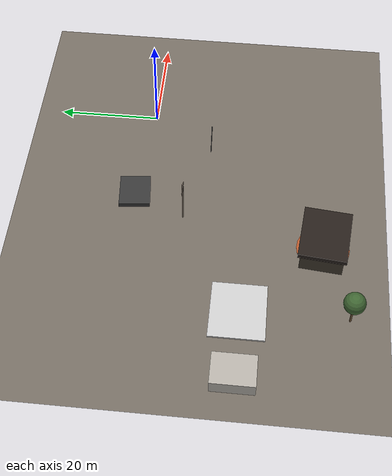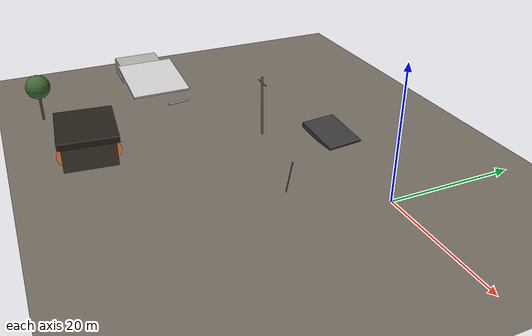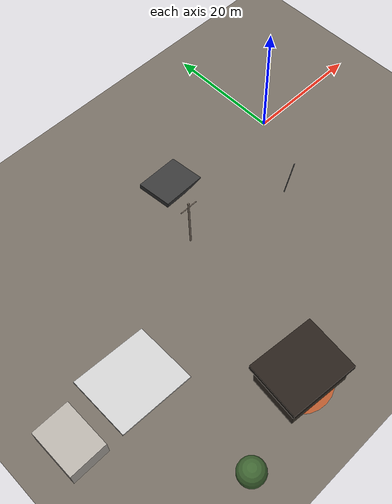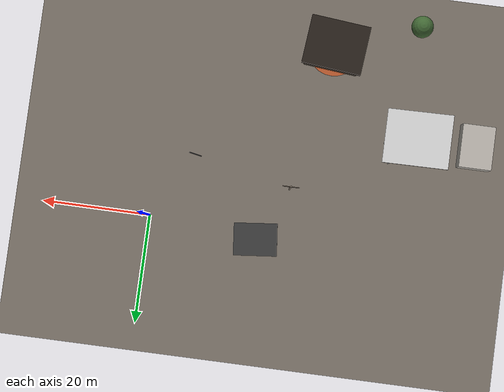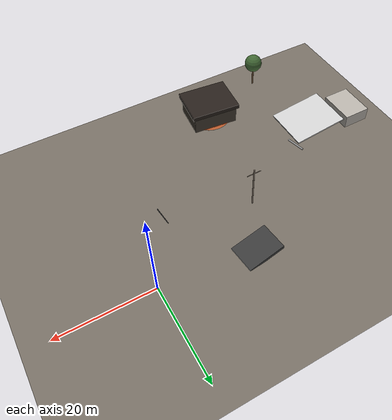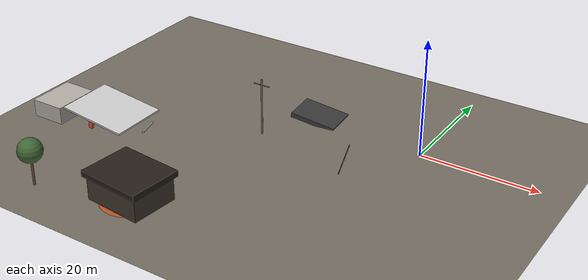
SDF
<sdf version="1.9">
 <world name="earthquake_zone">
  <model name="ground_plane">
   <static>true</static>
   <link name="link">
    <collision name="collision">
     <geometry><plane><normal>0 0 1</normal><size>300 300</size></plane></geometry>
     <surface><friction><ode><mu>100</mu><mu2>50</mu2></ode></friction></surface>
    </collision>
    <visual name="visual">
     <geometry><plane><normal>0 0 1</normal><size>300 300</size></plane></geometry>
     <material>
      <ambient>0.35 0.32 0.28 1</ambient>
      <diffuse>0.45 0.42 0.38 1</diffuse>
      <specular>0.05 0.05 0.05 1</specular>
     </material>
    </visual>
   </link>
  </model>
  <model name="road_upheaval">
   <static>true</static>
   <pose>-20 2 0 0 0.15 0.1</pose>
   <link name="link">
    <collision name="col"><geometry><box><size>8 6 0.8</size></box></geometry></collision>
    <visual name="vis">
     <pose>0 0 0.4 0 0 0</pose>
     <geometry><box><size>8 6 0.8</size></box></geometry>
     <material><ambient>0.18 0.18 0.18 1</ambient><diffuse>0.22 0.22 0.22 1</diffuse></material>
    </visual>
   </link>
  </model>
  <model name="house_burned">
   <static>true</static>
   <pose>-30 -35 0 0 0 -0.1</pose>
   <link name="structure">
    <collision name="col"><pose>0 0 2 0 0 0</pose><geometry><box><size>10 8 4</size></box></geometry></collision>
    <visual name="walls">
     <pose>0 0 2 0 0 0</pose>
     <geometry><box><size>10 8 4</size></box></geometry>
     <material>
      <ambient>0.2 0.18 0.15 1</ambient>
      <diffuse>0.25 0.22 0.18 1</diffuse>
      <pbr><metal><roughness>0.95</roughness><metalness>0.0</metalness></metal></pbr>
      <specular>0.3 0.3 0.3 1</specular>
     </material>
    </visual>
    <visual name="roof">
     <pose>0 0 4.5 0 0 0</pose>
     <geometry><box><size>11 9 1</size></box></geometry>
     <material>
      <ambient>0.1 0.08 0.06 1</ambient>
      <diffuse>0.15 0.12 0.1 1</diffuse>
      <pbr><metal><roughness>0.95</roughness><metalness>0.0</metalness></metal></pbr>
      <specular>0.3 0.3 0.3 1</specular>
     </material>
    </visual>
    <particle_emitter name="fire_house" type="box">
     <pose>2 0 4 0 0 0</pose>
     <emitting>true</emitting>
     <size>3 3 0.5</size>
     <particle_size>1.5 1.5 2</particle_size>
     <lifetime>2</lifetime>
     <min_velocity>1</min_velocity>
     <max_velocity>3</max_velocity>
     <scale_rate>0.5</scale_rate>
     <rate>15</rate>
     <material><diffuse>1.0 0.5 0.1 0.8</diffuse></material>
    </particle_emitter>
    <particle_emitter name="smoke_house" type="box">
     <pose>2 0 6 0 0 0</pose>
     <emitting>true</emitting>
     <size>4 4 1</size>
     <particle_size>4 4 4</particle_size>
     <lifetime>10</lifetime>
     <min_velocity>1</min_velocity>
     <max_velocity>3</max_velocity>
     <scale_rate>2</scale_rate>
     <rate>8</rate>
     <material><diffuse>0.3 0.3 0.3 0.4</diffuse></material>
    </particle_emitter>
   </link>
  </model>
  <model name="heat_source_1">
   <static>true</static>
   <pose>-30 -35 0.1 0 0 0</pose>
   <link name="link">
    <visual name="heat_marker">
     <geometry><cylinder><radius>5</radius><length>0.05</length></cylinder></geometry>
     <material>
      <ambient>0.8 0.2 0.0 0.5</ambient>
      <diffuse>1.0 0.3 0.0 0.5</diffuse>
      <emissive>1.0 0.3 0.0 1</emissive>
     </material>
    </visual>
   </link>
  </model>
  <model name="gas_station">
   <static>true</static>
   <pose>-50 -20 0 0 0 0</pose>
   <link name="building">
    <collision name="col">
     <pose>-8 0 1.5 0 0 0</pose>
     <geometry><box><size>6 8 3</size></box></geometry>
    </collision>
    <visual name="vis">
     <pose>-8 0 1.5 0 0 0</pose>
     <geometry><box><size>6 8 3</size></box></geometry>
     <material>
      <ambient>0.6 0.58 0.55 1</ambient>
      <diffuse>0.7 0.68 0.65 1</diffuse>
      <pbr><metal><roughness>0.7</roughness><metalness>0.1</metalness></metal></pbr>
      <specular>0.3 0.3 0.3 1</specular>
     </material>
    </visual>
   </link>
   <link name="canopy">
    <pose>3 0 3.5 0 0.12 0</pose>
    <collision name="col"><geometry><box><size>12 10 0.3</size></box></geometry></collision>
    <visual name="vis">
     <geometry><box><size>12 10 0.3</size></box></geometry>
     <material>
      <ambient>0.7 0.7 0.7 1</ambient>
      <diffuse>0.8 0.8 0.8 1</diffuse>
      <pbr><metal><roughness>0.7</roughness><metalness>0.1</metalness></metal></pbr>
      <specular>0.3 0.3 0.3 1</specular>
     </material>
    </visual>
   </link>
   <link name="pillar_fallen">
    <pose>8 3 0.2 1.5 0 0.3</pose>
    <collision name="col">
     <geometry><cylinder><radius>0.2</radius><length>4</length></cylinder></geometry>
    </collision>
    <visual name="vis">
     <geometry><cylinder><radius>0.2</radius><length>4</length></cylinder></geometry>
     <material>
      <ambient>0.5 0.5 0.5 1</ambient>
      <diffuse>0.6 0.6 0.6 1</diffuse>
      <pbr><metal><roughness>0.7</roughness><metalness>0.1</metalness></metal></pbr>
      <specular>0.3 0.3 0.3 1</specular>
     </material>
    </visual>
   </link>
   <link name="pump_1">
    <pose>0 -2 0.6 0 0.2 0</pose>
    <visual name="vis">
     <geometry><box><size>0.8 0.5 1.2</size></box></geometry>
     <material>
      <ambient>0.7 0.2 0.15 1</ambient>
      <diffuse>0.8 0.3 0.2 1</diffuse>
      <pbr><metal><roughness>0.7</roughness><metalness>0.1</metalness></metal></pbr>
      <specular>0.3 0.3 0.3 1</specular>
     </material>
    </visual>
   </link>
   <link name="pump_2">
    <pose>0 2 0.6 0 -0.15 0</pose>
    <visual name="vis">
     <geometry><box><size>0.8 0.5 1.2</size></box></geometry>
     <material>
      <ambient>0.7 0.2 0.15 1</ambient>
      <diffuse>0.8 0.3 0.2 1</diffuse>
      <pbr><metal><roughness>0.7</roughness><metalness>0.1</metalness></metal></pbr>
      <specular>0.3 0.3 0.3 1</specular>
     </material>
    </visual>
   </link>
   <link name="gas_leak">
    <pose>2 0 0.5 0 0 0</pose>
    <particle_emitter name="gas_leak_smoke" type="point">
     <emitting>true</emitting>
     <size>0.5 0.5 0.5</size>
     <particle_size>1 1 1</particle_size>
     <lifetime>4</lifetime>
     <min_velocity>0.3</min_velocity>
     <max_velocity>1</max_velocity>
     <scale_rate>0.5</scale_rate>
     <rate>3</rate>
     <material><diffuse>0.7 0.7 0.5 0.2</diffuse></material>
    </particle_emitter>
   </link>
  </model>
  <model name="search_flag_3">
   <static>true</static>
   <pose>-48 -18 0 0 0 0</pose>
   <link name="pole">
    <visual name="vis">
     <pose>0 0 0.75 0 0 0</pose>
     <geometry><cylinder><radius>0.02</radius><length>1.5</length></cylinder></geometry>
     <material><ambient>0.5 0.5 0.5 1</ambient><diffuse>0.6 0.6 0.6 1</diffuse></material>
    </visual>
   </link>
   <link name="flag">
    <pose>0.15 0 1.35 0 0 0</pose>
    <visual name="vis">
     <geometry><box><size>0.3 0.02 0.2</size></box></geometry>
     <material><ambient>0.9 0.8 0.1 1</ambient><diffuse>1.0 0.9 0.2 1</diffuse></material>
    </visual>
   </link>
  </model>
  <model name="power_pole_standing">
   <static>true</static>
   <pose>-25 -8 0 0 0 0</pose>
   <link name="pole">
    <collision name="col">
     <pose>0 0 5 0 0 0</pose>
     <geometry><cylinder><radius>0.15</radius><length>10</length></cylinder></geometry>
    </collision>
    <visual name="vis">
     <pose>0 0 5 0 0 0</pose>
     <geometry><cylinder><radius>0.15</radius><length>10</length></cylinder></geometry>
     <material><ambient>0.35 0.3 0.25 1</ambient><diffuse>0.45 0.4 0.35 1</diffuse></material>
    </visual>
   </link>
   <link name="crossbar">
    <pose>0 0 9 0 1.57 0</pose>
    <visual name="vis">
     <geometry><cylinder><radius>0.08</radius><length>3</length></cylinder></geometry>
     <material><ambient>0.35 0.3 0.25 1</ambient><diffuse>0.45 0.4 0.35 1</diffuse></material>
    </visual>
   </link>
  </model>
  <model name="street_lamp">
   <static>true</static>
   <pose>-8 -12 0 0 0.3 0</pose>
   <link name="pole">
    <collision name="col">
     <pose>0 0 3 0 0 0</pose>
     <geometry><cylinder><radius>0.08</radius><length>6</length></cylinder></geometry>
    </collision>
    <visual name="vis">
     <pose>0 0 3 0 0 0</pose>
     <geometry><cylinder><radius>0.08</radius><length>6</length></cylinder></geometry>
     <material><ambient>0.3 0.3 0.3 1</ambient><diffuse>0.4 0.4 0.4 1</diffuse></material>
    </visual>
   </link>
  </model>
  <model name="tree_standing_2">
   <static>true</static>
   <pose>-45 -40 0 0 0 0</pose>
   <link name="trunk">
    <pose>0 0 2.5 0 0 0</pose>
    <visual name="vis">
     <geometry><cylinder><radius>0.2</radius><length>5</length></cylinder></geometry>
     <material><ambient>0.3 0.2 0.15 1</ambient><diffuse>0.4 0.3 0.2 1</diffuse></material>
    </visual>
   </link>
   <link name="canopy">
    <pose>0 0 6 0 0 0</pose>
    <visual name="vis">
     <geometry><sphere><radius>2</radius></sphere></geometry>
     <material><ambient>0.2 0.35 0.15 1</ambient><diffuse>0.25 0.4 0.2 1</diffuse></material>
    </visual>
   </link>
  </model>
 </world>
</sdf>
